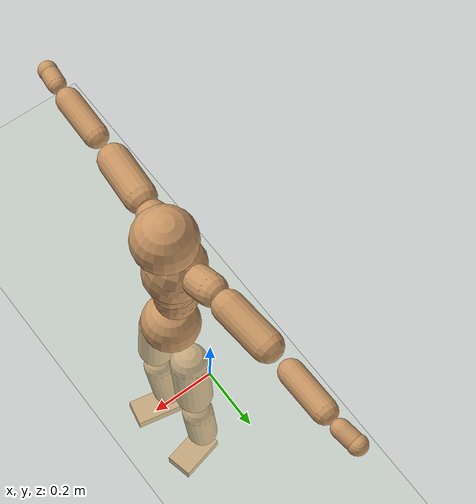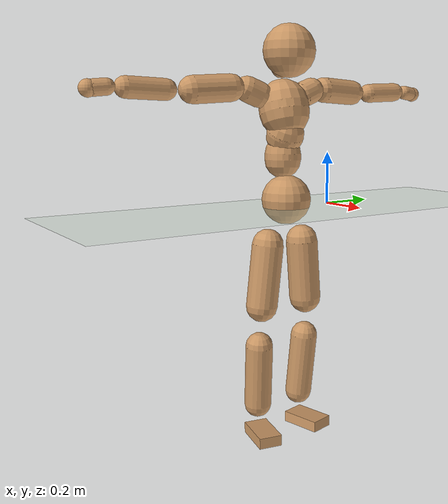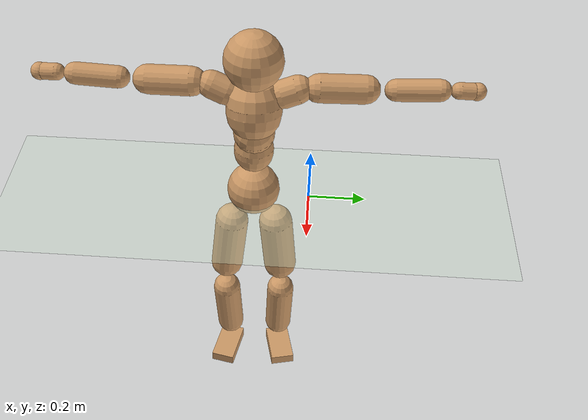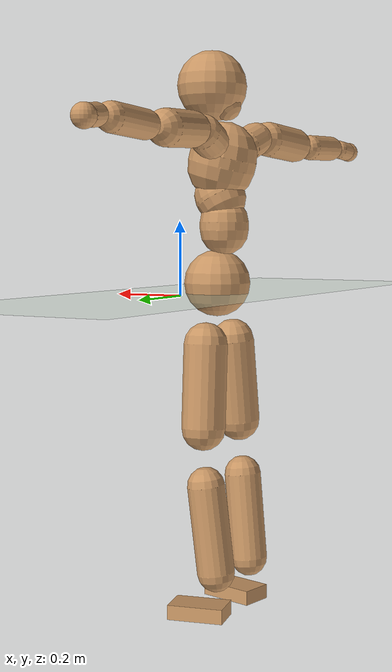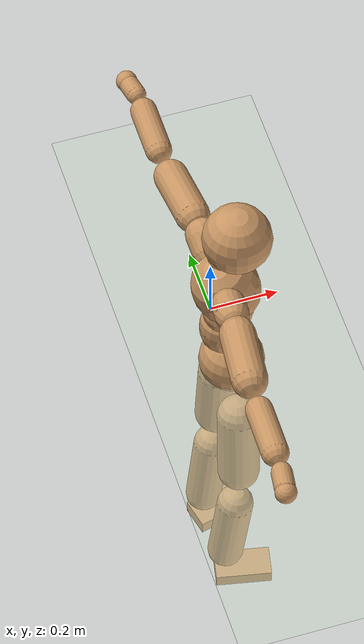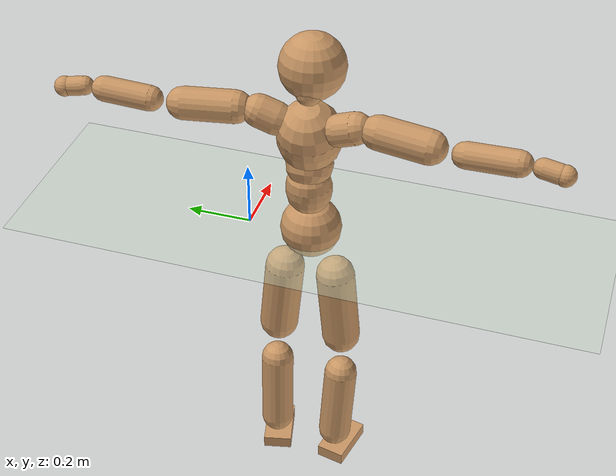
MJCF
<mujoco model="humanoid">
  <compiler coordinate="local" angle="radian"/>
  <default>
    <joint damping="0.0" armature="0.01" stiffness="0.0" limited="true"/>
    <geom conaffinity="1" condim="3" contype="7" margin="0.001" rgba="0.8 0.6 .4 1"/>
  </default>
  <asset>
    <texture type="skybox" builtin="gradient" rgb1=".4 .5 .6" rgb2="0 0 0" width="100" height="100"/>
    <texture builtin="flat" height="1278" mark="cross" markrgb="1 1 1" name="texgeom" random="0.01" rgb1="0.8 0.6 0.4" rgb2="0.8 0.6 0.4" type="cube" width="127"/>
    <texture builtin="checker" height="100" name="texplane" rgb1="0 0 0" rgb2="0.8 0.8 0.8" type="2d" width="100"/>
    <material name="MatPlane" reflectance="0.5" shininess="1" specular="1" texrepeat="60 60" texture="texplane"/>
    <material name="geom" texture="texgeom" texuniform="true"/>
  </asset>
  <worldbody>
    <light cutoff="100" diffuse="1 1 1" dir="-0 0 -1.3" directional="true" exponent="1" pos="0 0 1.3" specular=".1 .1 .1"/>
    <geom conaffinity="1" condim="3" name="floor" pos="0 0 0" rgba="0.8 0.9 0.8 1" size="100 100 .2" type="plane" material="MatPlane"/>
    <body name="Pelvis" pos="-0.0003 -0.1981 0.0269">
      <freejoint name="Pelvis"/>
      <geom type="sphere" contype="1" conaffinity="1" density="500" size="0.0941" pos="0.0000 0.0000 0.0000" name="Pelvis"/>
      <body name="L_Hip" pos="-0.0076 0.0749 -0.0898">
        <joint name="L_Hip_x" type="hinge" pos="0 0 0" axis="1 0 0" stiffness="800" damping="80" armature="0.02" range="-180.0000 180.0000"/>
        <joint name="L_Hip_y" type="hinge" pos="0 0 0" axis="0 1 0" stiffness="800" damping="80" armature="0.02" range="-180.0000 180.0000"/>
        <joint name="L_Hip_z" type="hinge" pos="0 0 0" axis="0 0 1" stiffness="800" damping="80" armature="0.02" range="-180.0000 180.0000"/>
        <geom type="capsule" contype="1" conaffinity="1" density="500" fromto="-0.0014 0.0068 -0.0779 -0.0054 0.0274 -0.3115" size="0.0618" name="L_Hip"/>
        <body name="L_Knee" pos="-0.0068 0.0342 -0.3894">
          <joint name="L_Knee_x" type="hinge" pos="0 0 0" axis="1 0 0" stiffness="800" damping="80" armature="0.02" range="-180.0000 180.0000"/>
          <joint name="L_Knee_y" type="hinge" pos="0 0 0" axis="0 1 0" stiffness="800" damping="80" armature="0.02" range="-180.0000 180.0000"/>
          <joint name="L_Knee_z" type="hinge" pos="0 0 0" axis="0 0 1" stiffness="800" damping="80" armature="0.02" range="-180.0000 180.0000"/>
          <geom type="capsule" contype="1" conaffinity="1" density="500" fromto="-0.0092 -0.0023 -0.0823 -0.0368 -0.0091 -0.3292" size="0.0529" name="L_Knee"/>
          <body name="L_Ankle" pos="-0.046 -0.0114 -0.4116">
            <joint name="L_Ankle_x" type="hinge" pos="0 0 0" axis="1 0 0" stiffness="800" damping="80" armature="0.02" range="-180.0000 180.0000"/>
            <joint name="L_Ankle_y" type="hinge" pos="0 0 0" axis="0 1 0" stiffness="800" damping="80" armature="0.02" range="-180.0000 180.0000"/>
            <joint name="L_Ankle_z" type="hinge" pos="0 0 0" axis="0 0 1" stiffness="800" damping="80" armature="0.02" range="-180.0000 180.0000"/>
            <geom type="box" contype="1" conaffinity="1" density="500" pos="0.0574 0.0133 -0.0291" size="0.0802 0.0462 0.0209" quat="0.9935 0.0000 0.0000 0.1135" name="L_Ankle"/>
            <body name="L_Toe" pos="0.1148 0.0266 -0.0581">
              <joint name="L_Toe_x" type="hinge" pos="0 0 0" axis="1 0 0" stiffness="500" damping="50" armature="0.02" range="-180.0000 180.0000"/>
              <joint name="L_Toe_y" type="hinge" pos="0 0 0" axis="0 1 0" stiffness="500" damping="50" armature="0.02" range="-180.0000 180.0000"/>
              <joint name="L_Toe_z" type="hinge" pos="0 0 0" axis="0 0 1" stiffness="500" damping="50" armature="0.02" range="-180.0000 180.0000"/>
              <geom type="box" contype="1" conaffinity="1" density="500" pos="0.0000 0.0000 0.0289" size="0.0009 0.0023 0.001" quat="0.9928 0.0000 0.0000 0.1197" name="L_Toe"/>
            </body>
          </body>
        </body>
      </body>
      <body name="R_Hip" pos="-0.0034 -0.073 -0.0892">
        <joint name="R_Hip_x" type="hinge" pos="0 0 0" axis="1 0 0" stiffness="800" damping="80" armature="0.02" range="-180.0000 180.0000"/>
        <joint name="R_Hip_y" type="hinge" pos="0 0 0" axis="0 1 0" stiffness="800" damping="80" armature="0.02" range="-180.0000 180.0000"/>
        <joint name="R_Hip_z" type="hinge" pos="0 0 0" axis="0 0 1" stiffness="800" damping="80" armature="0.02" range="-180.0000 180.0000"/>
        <geom type="capsule" contype="1" conaffinity="1" density="500" fromto="-0.0017 -0.0083 -0.0793 -0.0070 -0.0331 -0.3174" size="0.0609" name="R_Hip"/>
        <body name="R_Knee" pos="-0.0087 -0.0414 -0.3967">
          <joint name="R_Knee_x" type="hinge" pos="0 0 0" axis="1 0 0" stiffness="800" damping="80" armature="0.02" range="-180.0000 180.0000"/>
          <joint name="R_Knee_y" type="hinge" pos="0 0 0" axis="0 1 0" stiffness="800" damping="80" armature="0.02" range="-180.0000 180.0000"/>
          <joint name="R_Knee_z" type="hinge" pos="0 0 0" axis="0 0 1" stiffness="800" damping="80" armature="0.02" range="-180.0000 180.0000"/>
          <geom type="capsule" contype="1" conaffinity="1" density="500" fromto="-0.0087 0.0030 -0.0827 -0.0347 0.0119 -0.3309" size="0.0532" name="R_Knee"/>
          <body name="R_Ankle" pos="-0.0434 0.0148 -0.4137">
            <joint name="R_Ankle_x" type="hinge" pos="0 0 0" axis="1 0 0" stiffness="800" damping="80" armature="0.02" range="-180.0000 180.0000"/>
            <joint name="R_Ankle_y" type="hinge" pos="0 0 0" axis="0 1 0" stiffness="800" damping="80" armature="0.02" range="-180.0000 180.0000"/>
            <joint name="R_Ankle_z" type="hinge" pos="0 0 0" axis="0 0 1" stiffness="800" damping="80" armature="0.02" range="-180.0000 180.0000"/>
            <geom type="box" contype="1" conaffinity="1" density="500" pos="0.0594 -0.0120 -0.0253" size="0.0826 0.0458 0.0209" quat="0.9950 0.0000 0.0000 -0.0997" name="R_Ankle"/>
            <body name="R_Toe" pos="0.1188 -0.024 -0.0506">
              <joint name="R_Toe_x" type="hinge" pos="0 0 0" axis="1 0 0" stiffness="500" damping="50" armature="0.02" range="-180.0000 180.0000"/>
              <joint name="R_Toe_y" type="hinge" pos="0 0 0" axis="0 1 0" stiffness="500" damping="50" armature="0.02" range="-180.0000 180.0000"/>
              <joint name="R_Toe_z" type="hinge" pos="0 0 0" axis="0 0 1" stiffness="500" damping="50" armature="0.02" range="-180.0000 180.0000"/>
              <geom type="box" contype="1" conaffinity="1" density="500" pos="0.0000 0.0000 0.0268" size="0.0009 0.0023 0.0011" quat="0.9959 0.0000 0.0000 -0.0901" name="R_Toe"/>
            </body>
          </body>
        </body>
      </body>
      <body name="Torso" pos="-0.0222 -0.0017 0.1023">
        <joint name="Torso_x" type="hinge" pos="0 0 0" axis="1 0 0" stiffness="1000" damping="100" armature="0.02" range="-180.0000 180.0000"/>
        <joint name="Torso_y" type="hinge" pos="0 0 0" axis="0 1 0" stiffness="1000" damping="100" armature="0.02" range="-180.0000 180.0000"/>
        <joint name="Torso_z" type="hinge" pos="0 0 0" axis="0 0 1" stiffness="1000" damping="100" armature="0.02" range="-180.0000 180.0000"/>
        <geom type="capsule" contype="1" conaffinity="1" density="500" fromto="-0.0007 0.0018 0.0703 -0.0005 0.0012 0.0469" size="0.0692" name="Torso"/>
        <body name="Spine" pos="-0.0011 0.0029 0.1172">
          <joint name="Spine_x" type="hinge" pos="0 0 0" axis="1 0 0" stiffness="1000" damping="100" armature="0.02" range="-180.0000 180.0000"/>
          <joint name="Spine_y" type="hinge" pos="0 0 0" axis="0 1 0" stiffness="1000" damping="100" armature="0.02" range="-180.0000 180.0000"/>
          <joint name="Spine_z" type="hinge" pos="0 0 0" axis="0 0 1" stiffness="1000" damping="100" armature="0.02" range="-180.0000 180.0000"/>
          <geom type="capsule" contype="1" conaffinity="1" density="500" fromto="0.0152 0.0006 0.0289 0.0102 0.0004 0.0193" size="0.0712" name="Spine"/>
          <body name="Chest" pos="0.0254 0.001 0.0481">
            <joint name="Chest_x" type="hinge" pos="0 0 0" axis="1 0 0" stiffness="1000" damping="100" armature="0.02" range="-180.0000 180.0000"/>
            <joint name="Chest_y" type="hinge" pos="0 0 0" axis="0 1 0" stiffness="1000" damping="100" armature="0.02" range="-180.0000 180.0000"/>
            <joint name="Chest_z" type="hinge" pos="0 0 0" axis="0 0 1" stiffness="1000" damping="100" armature="0.02" range="-180.0000 180.0000"/>
            <geom type="capsule" contype="1" conaffinity="1" density="500" fromto="-0.0238 -0.0014 0.0889 -0.0159 -0.0009 0.0593" size="0.095" name="Chest"/>
            <body name="Neck" pos="-0.0434 -0.0043 0.2123">
              <joint name="Neck_x" type="hinge" pos="0 0 0" axis="1 0 0" stiffness="500" damping="50" armature="0.02" range="-180.0000 180.0000"/>
              <joint name="Neck_y" type="hinge" pos="0 0 0" axis="0 1 0" stiffness="500" damping="50" armature="0.02" range="-180.0000 180.0000"/>
              <joint name="Neck_z" type="hinge" pos="0 0 0" axis="0 0 1" stiffness="500" damping="50" armature="0.02" range="-180.0000 180.0000"/>
              <geom type="capsule" contype="1" conaffinity="1" density="500" fromto="0.0110 0.0009 0.0141 0.0441 0.0035 0.0563" size="0.0409" name="Neck"/>
              <body name="Head" pos="0.0551 0.0044 0.0703">
                <joint name="Head_x" type="hinge" pos="0 0 0" axis="1 0 0" stiffness="500" damping="50" armature="0.02" range="-180.0000 180.0000"/>
                <joint name="Head_y" type="hinge" pos="0 0 0" axis="0 1 0" stiffness="500" damping="50" armature="0.02" range="-180.0000 180.0000"/>
                <joint name="Head_z" type="hinge" pos="0 0 0" axis="0 0 1" stiffness="500" damping="50" armature="0.02" range="-180.0000 180.0000"/>
                <geom type="sphere" contype="1" conaffinity="1" density="500" size="0.0980" pos="0.0000 0.0000 0.0000" name="Head"/>
              </body>
            </body>
            <body name="L_Thorax" pos="-0.0355 0.075 0.1166">
              <joint name="L_Thorax_x" type="hinge" pos="0 0 0" axis="1 0 0" stiffness="500" damping="50" armature="0.02" range="-180.0000 180.0000"/>
              <joint name="L_Thorax_y" type="hinge" pos="0 0 0" axis="0 1 0" stiffness="500" damping="50" armature="0.02" range="-180.0000 180.0000"/>
              <joint name="L_Thorax_z" type="hinge" pos="0 0 0" axis="0 0 1" stiffness="500" damping="50" armature="0.02" range="-180.0000 180.0000"/>
              <geom type="capsule" contype="1" conaffinity="1" density="500" fromto="-0.0017 0.0166 0.0064 -0.0067 0.0663 0.0255" size="0.0491" name="L_Thorax"/>
              <body name="L_Shoulder" pos="-0.0084 0.0829 0.0318">
                <joint name="L_Shoulder_x" type="hinge" pos="0 0 0" axis="1 0 0" stiffness="500" damping="50" armature="0.02" range="-720.0000 720.0000"/>
                <joint name="L_Shoulder_y" type="hinge" pos="0 0 0" axis="0 1 0" stiffness="500" damping="50" armature="0.02" range="-720.0000 720.0000"/>
                <joint name="L_Shoulder_z" type="hinge" pos="0 0 0" axis="0 0 1" stiffness="500" damping="50" armature="0.02" range="-720.0000 720.0000"/>
                <geom type="capsule" contype="1" conaffinity="1" density="500" fromto="-0.0051 0.0513 -0.0026 -0.0206 0.2054 -0.0104" size="0.049" name="L_Shoulder"/>
                <body name="L_Elbow" pos="-0.0257 0.2567 -0.013">
                  <joint name="L_Elbow_x" type="hinge" pos="0 0 0" axis="1 0 0" stiffness="500" damping="50" armature="0.02" range="-720.0000 720.0000"/>
                  <joint name="L_Elbow_y" type="hinge" pos="0 0 0" axis="0 1 0" stiffness="500" damping="50" armature="0.02" range="-720.0000 720.0000"/>
                  <joint name="L_Elbow_z" type="hinge" pos="0 0 0" axis="0 0 1" stiffness="500" damping="50" armature="0.02" range="-720.0000 720.0000"/>
                  <geom type="capsule" contype="1" conaffinity="1" density="500" fromto="-0.0003 0.0475 0.0020 -0.0010 0.1900 0.0082" size="0.0379" name="L_Elbow"/>
                  <body name="L_Wrist" pos="-0.0013 0.2376 0.0102">
                    <joint name="L_Wrist_x" type="hinge" pos="0 0 0" axis="1 0 0" stiffness="300" damping="30" armature="0.02" range="-180.0000 180.0000"/>
                    <joint name="L_Wrist_y" type="hinge" pos="0 0 0" axis="0 1 0" stiffness="300" damping="30" armature="0.02" range="-180.0000 180.0000"/>
                    <joint name="L_Wrist_z" type="hinge" pos="0 0 0" axis="0 0 1" stiffness="300" damping="30" armature="0.02" range="-180.0000 180.0000"/>
                    <geom type="capsule" contype="1" conaffinity="1" density="500" fromto="-0.0025 0.0150 -0.0019 -0.0100 0.0600 -0.0074" size="0.0284" name="L_Wrist"/>
                    <body name="L_Hand" pos="-0.0125 0.075 -0.0093">
                      <joint name="L_Hand_x" type="hinge" pos="0 0 0" axis="1 0 0" stiffness="300" damping="30" armature="0.02" range="-180.0000 180.0000"/>
                      <joint name="L_Hand_y" type="hinge" pos="0 0 0" axis="0 1 0" stiffness="300" damping="30" armature="0.02" range="-180.0000 180.0000"/>
                      <joint name="L_Hand_z" type="hinge" pos="0 0 0" axis="0 0 1" stiffness="300" damping="30" armature="0.02" range="-180.0000 180.0000"/>
                      <geom type="sphere" contype="1" conaffinity="1" density="500" size="0.0303" pos="0.0000 0.0000 0.0000" name="L_Hand"/>
                    </body>
                  </body>
                </body>
              </body>
            </body>
            <body name="R_Thorax" pos="-0.0401 -0.0778 0.1155">
              <joint name="R_Thorax_x" type="hinge" pos="0 0 0" axis="1 0 0" stiffness="500" damping="50" armature="0.02" range="-180.0000 180.0000"/>
              <joint name="R_Thorax_y" type="hinge" pos="0 0 0" axis="0 1 0" stiffness="500" damping="50" armature="0.02" range="-180.0000 180.0000"/>
              <joint name="R_Thorax_z" type="hinge" pos="0 0 0" axis="0 0 1" stiffness="500" damping="50" armature="0.02" range="-180.0000 180.0000"/>
              <geom type="capsule" contype="1" conaffinity="1" density="500" fromto="-0.0019 -0.0168 0.0070 -0.0076 -0.0673 0.0279" size="0.0478" name="R_Thorax"/>
              <body name="R_Shoulder" pos="-0.0094 -0.0841 0.0348">
                <joint name="R_Shoulder_x" type="hinge" pos="0 0 0" axis="1 0 0" stiffness="500" damping="50" armature="0.02" range="-720.0000 720.0000"/>
                <joint name="R_Shoulder_y" type="hinge" pos="0 0 0" axis="0 1 0" stiffness="500" damping="50" armature="0.02" range="-720.0000 720.0000"/>
                <joint name="R_Shoulder_z" type="hinge" pos="0 0 0" axis="0 0 1" stiffness="500" damping="50" armature="0.02" range="-720.0000 720.0000"/>
                <geom type="capsule" contype="1" conaffinity="1" density="500" fromto="-0.0043 -0.0496 -0.0030 -0.0174 -0.1984 -0.0122" size="0.0506" name="R_Shoulder"/>
                <body name="R_Elbow" pos="-0.0217 -0.248 -0.0152">
                  <joint name="R_Elbow_x" type="hinge" pos="0 0 0" axis="1 0 0" stiffness="500" damping="50" armature="0.02" range="-720.0000 720.0000"/>
                  <joint name="R_Elbow_y" type="hinge" pos="0 0 0" axis="0 1 0" stiffness="500" damping="50" armature="0.02" range="-720.0000 720.0000"/>
                  <joint name="R_Elbow_z" type="hinge" pos="0 0 0" axis="0 0 1" stiffness="500" damping="50" armature="0.02" range="-720.0000 720.0000"/>
                  <geom type="capsule" contype="1" conaffinity="1" density="500" fromto="-0.0010 -0.0492 0.0019 -0.0040 -0.1967 0.0074" size="0.0383" name="R_Elbow"/>
                  <body name="R_Wrist" pos="-0.005 -0.2458 0.0093">
                    <joint name="R_Wrist_x" type="hinge" pos="0 0 0" axis="1 0 0" stiffness="300" damping="30" armature="0.02" range="-180.0000 180.0000"/>
                    <joint name="R_Wrist_y" type="hinge" pos="0 0 0" axis="0 1 0" stiffness="300" damping="30" armature="0.02" range="-180.0000 180.0000"/>
                    <joint name="R_Wrist_z" type="hinge" pos="0 0 0" axis="0 0 1" stiffness="300" damping="30" armature="0.02" range="-180.0000 180.0000"/>
                    <geom type="capsule" contype="1" conaffinity="1" density="500" fromto="-0.0019 -0.0151 -0.0014 -0.0078 -0.0606 -0.0056" size="0.0292" name="R_Wrist"/>
                    <body name="R_Hand" pos="-0.0097 -0.0757 -0.007">
                      <joint name="R_Hand_x" type="hinge" pos="0 0 0" axis="1 0 0" stiffness="300" damping="30" armature="0.02" range="-180.0000 180.0000"/>
                      <joint name="R_Hand_y" type="hinge" pos="0 0 0" axis="0 1 0" stiffness="300" damping="30" armature="0.02" range="-180.0000 180.0000"/>
                      <joint name="R_Hand_z" type="hinge" pos="0 0 0" axis="0 0 1" stiffness="300" damping="30" armature="0.02" range="-180.0000 180.0000"/>
                      <geom type="sphere" contype="1" conaffinity="1" density="500" size="0.0305" pos="0.0000 0.0000 0.0000" name="R_Hand"/>
                    </body>
                  </body>
                </body>
              </body>
            </body>
          </body>
        </body>
      </body>
    </body>
  </worldbody>
  <actuator>
    <motor name="L_Hip_x" joint="L_Hip_x" gear="500"/>
    <motor name="L_Hip_y" joint="L_Hip_y" gear="500"/>
    <motor name="L_Hip_z" joint="L_Hip_z" gear="500"/>
    <motor name="L_Knee_x" joint="L_Knee_x" gear="500"/>
    <motor name="L_Knee_y" joint="L_Knee_y" gear="500"/>
    <motor name="L_Knee_z" joint="L_Knee_z" gear="500"/>
    <motor name="L_Ankle_x" joint="L_Ankle_x" gear="500"/>
    <motor name="L_Ankle_y" joint="L_Ankle_y" gear="500"/>
    <motor name="L_Ankle_z" joint="L_Ankle_z" gear="500"/>
    <motor name="L_Toe_x" joint="L_Toe_x" gear="500"/>
    <motor name="L_Toe_y" joint="L_Toe_y" gear="500"/>
    <motor name="L_Toe_z" joint="L_Toe_z" gear="500"/>
    <motor name="R_Hip_x" joint="R_Hip_x" gear="500"/>
    <motor name="R_Hip_y" joint="R_Hip_y" gear="500"/>
    <motor name="R_Hip_z" joint="R_Hip_z" gear="500"/>
    <motor name="R_Knee_x" joint="R_Knee_x" gear="500"/>
    <motor name="R_Knee_y" joint="R_Knee_y" gear="500"/>
    <motor name="R_Knee_z" joint="R_Knee_z" gear="500"/>
    <motor name="R_Ankle_x" joint="R_Ankle_x" gear="500"/>
    <motor name="R_Ankle_y" joint="R_Ankle_y" gear="500"/>
    <motor name="R_Ankle_z" joint="R_Ankle_z" gear="500"/>
    <motor name="R_Toe_x" joint="R_Toe_x" gear="500"/>
    <motor name="R_Toe_y" joint="R_Toe_y" gear="500"/>
    <motor name="R_Toe_z" joint="R_Toe_z" gear="500"/>
    <motor name="Torso_x" joint="Torso_x" gear="500"/>
    <motor name="Torso_y" joint="Torso_y" gear="500"/>
    <motor name="Torso_z" joint="Torso_z" gear="500"/>
    <motor name="Spine_x" joint="Spine_x" gear="500"/>
    <motor name="Spine_y" joint="Spine_y" gear="500"/>
    <motor name="Spine_z" joint="Spine_z" gear="500"/>
    <motor name="Chest_x" joint="Chest_x" gear="500"/>
    <motor name="Chest_y" joint="Chest_y" gear="500"/>
    <motor name="Chest_z" joint="Chest_z" gear="500"/>
    <motor name="Neck_x" joint="Neck_x" gear="500"/>
    <motor name="Neck_y" joint="Neck_y" gear="500"/>
    <motor name="Neck_z" joint="Neck_z" gear="500"/>
    <motor name="Head_x" joint="Head_x" gear="500"/>
    <motor name="Head_y" joint="Head_y" gear="500"/>
    <motor name="Head_z" joint="Head_z" gear="500"/>
    <motor name="L_Thorax_x" joint="L_Thorax_x" gear="500"/>
    <motor name="L_Thorax_y" joint="L_Thorax_y" gear="500"/>
    <motor name="L_Thorax_z" joint="L_Thorax_z" gear="500"/>
    <motor name="L_Shoulder_x" joint="L_Shoulder_x" gear="500"/>
    <motor name="L_Shoulder_y" joint="L_Shoulder_y" gear="500"/>
    <motor name="L_Shoulder_z" joint="L_Shoulder_z" gear="500"/>
    <motor name="L_Elbow_x" joint="L_Elbow_x" gear="500"/>
    <motor name="L_Elbow_y" joint="L_Elbow_y" gear="500"/>
    <motor name="L_Elbow_z" joint="L_Elbow_z" gear="500"/>
    <motor name="L_Wrist_x" joint="L_Wrist_x" gear="500"/>
    <motor name="L_Wrist_y" joint="L_Wrist_y" gear="500"/>
    <motor name="L_Wrist_z" joint="L_Wrist_z" gear="500"/>
    <motor name="L_Hand_x" joint="L_Hand_x" gear="500"/>
    <motor name="L_Hand_y" joint="L_Hand_y" gear="500"/>
    <motor name="L_Hand_z" joint="L_Hand_z" gear="500"/>
    <motor name="R_Thorax_x" joint="R_Thorax_x" gear="500"/>
    <motor name="R_Thorax_y" joint="R_Thorax_y" gear="500"/>
    <motor name="R_Thorax_z" joint="R_Thorax_z" gear="500"/>
    <motor name="R_Shoulder_x" joint="R_Shoulder_x" gear="500"/>
    <motor name="R_Shoulder_y" joint="R_Shoulder_y" gear="500"/>
    <motor name="R_Shoulder_z" joint="R_Shoulder_z" gear="500"/>
    <motor name="R_Elbow_x" joint="R_Elbow_x" gear="500"/>
    <motor name="R_Elbow_y" joint="R_Elbow_y" gear="500"/>
    <motor name="R_Elbow_z" joint="R_Elbow_z" gear="500"/>
    <motor name="R_Wrist_x" joint="R_Wrist_x" gear="500"/>
    <motor name="R_Wrist_y" joint="R_Wrist_y" gear="500"/>
    <motor name="R_Wrist_z" joint="R_Wrist_z" gear="500"/>
    <motor name="R_Hand_x" joint="R_Hand_x" gear="500"/>
    <motor name="R_Hand_y" joint="R_Hand_y" gear="500"/>
    <motor name="R_Hand_z" joint="R_Hand_z" gear="500"/>
  </actuator>
  <contact>
    <exclude body1="Torso" body2="Chest"/>
    <exclude body1="Head" body2="Chest"/>
    <exclude body1="R_Knee" body2="R_Toe"/>
    <exclude body1="R_Knee" body2="L_Ankle"/>
    <exclude body1="R_Knee" body2="L_Toe"/>
    <exclude body1="L_Knee" body2="L_Toe"/>
    <exclude body1="L_Knee" body2="R_Ankle"/>
    <exclude body1="L_Knee" body2="R_Toe"/>
    <exclude body1="L_Shoulder" body2="Chest"/>
    <exclude body1="R_Shoulder" body2="Chest"/>
  </contact>
  <sensor/>
  <size njmax="700" nconmax="700"/>
</mujoco>
